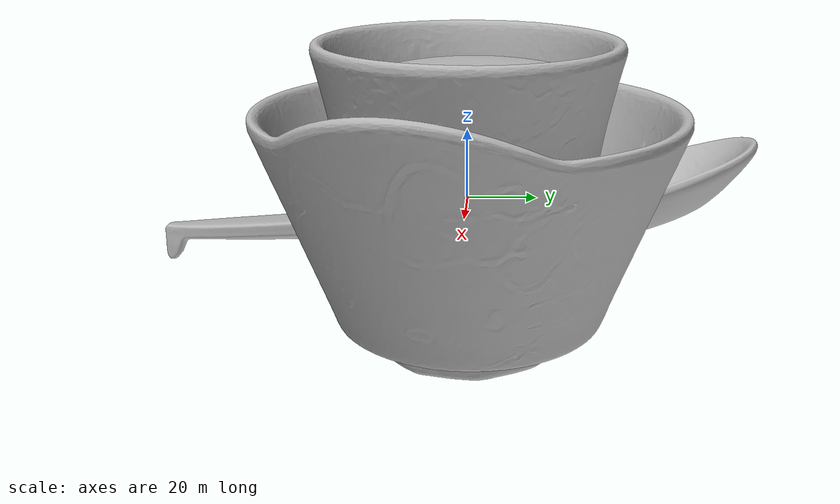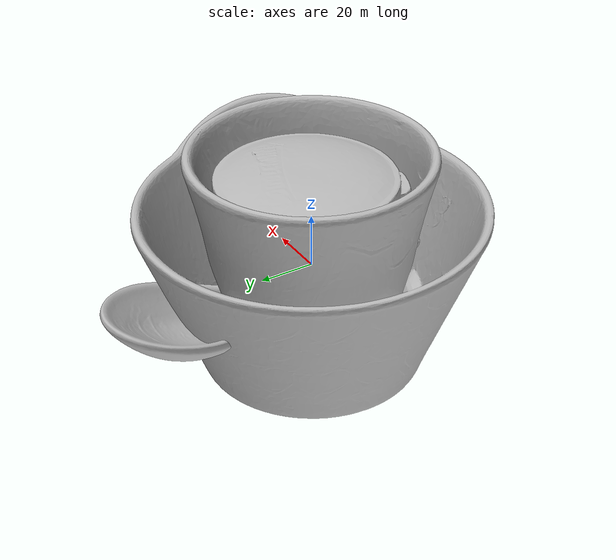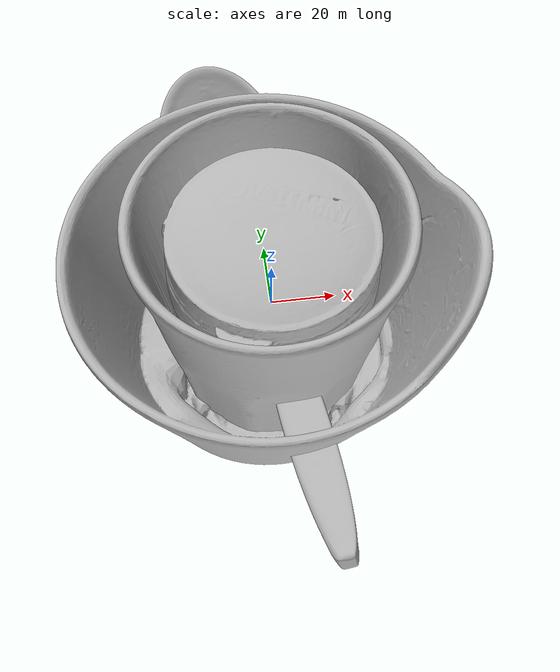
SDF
<sdf version="1.4">
 <world name="default">
  <light name="light1" type="point">
   <pose>0 0 1 0 0 0</pose>
   <diffuse>3 3 3 1</diffuse>
   <specular>3 3 3 1</specular>
  </light>
  <light name="light2" type="point">
   <pose>0 0.5 2 0 0 0</pose>
   <diffuse>1 1 1 1</diffuse>
   <specular>1 1 1 1</specular>
  </light>
  <light name="light3" type="point">
   <pose>0 0.5 2 0 0 0</pose>
   <diffuse>3 3 3 1</diffuse>
   <specular>3 3 3 1</specular>
  </light>
  <scene><ambient>0.7 0.7 0.7</ambient></scene>
  <model name="bottle1">
   <link name="link_bottle1">
    <collision name="default">
     <geometry>
      <mesh><uri>model://green_arrow/collision_meshes/collision.obj</uri><scale>1.0 1.0 1.0</scale></mesh>
     </geometry>
     <surface>
      <friction><ode><mu>0.5</mu><mu2>0.5</mu2></ode></friction>
      <contact><ode><max_vel>0</max_vel><min_depth>0.0001</min_depth><kp>1e8</kp></ode></contact>
     </surface>
    </collision>
    <visual name="default">
     <geometry>
      <mesh><uri>model://green_arrow/visual_meshes/visual.dae</uri><scale>1.0 1.0 1.0</scale></mesh>
     </geometry>
    </visual>
    <inertial>
     <mass>0.2764224410057068</mass>
     <pose>0.0005358477937988937 -0.0008270691032521427 0.002210969105362892 -0.06332196008274972 0.012988210902137025 0.674142157837799</pose>
     <inertia>
      <ixx>0.00020051825</ixx>
      <iyy>0.00020021446</iyy>
      <izz>0.00012947427</izz>
      <ixy>0</ixy>
      <ixz>0</ixz>
      <iyz>0</iyz>
     </inertia>
    </inertial>
   </link>
   <pose>0.04432397335767746 0.36850476264953613 0.03896165266633034 0.04528453508588784 0.024256379692251785 2.048726685239397</pose>
  </model>
  <model name="bottle2">
   <link name="link_bottle2">
    <collision name="default">
     <geometry>
      <mesh><uri>model://pure_zhen/collision_meshes/collision.obj</uri><scale>1.0 1.0 1.0</scale></mesh>
     </geometry>
     <surface>
      <friction><ode><mu>0.5</mu><mu2>0.5</mu2></ode></friction>
      <contact><ode><max_vel>0</max_vel><min_depth>0.0001</min_depth><kp>1e8</kp></ode></contact>
     </surface>
    </collision>
    <visual name="default">
     <geometry>
      <mesh><uri>model://pure_zhen/visual_meshes/visual.dae</uri><scale>1.0 1.0 1.0</scale></mesh>
     </geometry>
    </visual>
    <inertial>
     <mass>0.2372884750366211</mass>
     <pose>-8.582299778936431e-05 0.0002452346670906991 -0.0015797418309375644 -0.027641670524606855 0.005623077019143168 0.30585846122319743</pose>
     <inertia>
      <ixx>0.0007112664</ixx>
      <iyy>0.00071145216</iyy>
      <izz>7.51383e-05</izz>
      <ixy>0</ixy>
      <ixz>0</ixz>
      <iyz>0</iyz>
     </inertia>
    </inertial>
   </link>
   <pose>0.1359909325838089 0.35345184803009033 0.09194846451282501 0.0194888280940217 -0.016088133821751095 2.8335447381551075</pose>
  </model>
  <model name="silverware1">
   <link name="link_silverware1">
    <collision name="default">
     <geometry>
      <mesh><uri>model://doraemon_spoon/collision_meshes/collision.obj</uri><scale>1.0 1.0 1.0</scale></mesh>
     </geometry>
     <surface>
      <friction><ode><mu>0.5</mu><mu2>0.5</mu2></ode></friction>
      <contact><ode><max_vel>0</max_vel><min_depth>0.0001</min_depth><kp>1e8</kp></ode></contact>
     </surface>
    </collision>
    <visual name="default">
     <geometry>
      <mesh><uri>model://doraemon_spoon/visual_meshes/visual.dae</uri><scale>1.0 1.0 1.0</scale></mesh>
     </geometry>
    </visual>
    <inertial>
     <mass>0.020818473771214485</mass>
     <pose>-0.022165074944496155 -0.0006374582881107926 -0.0033325462136417627 -0.009147017253597407 0.0738041759980984 -0.014123826591698564</pose>
     <inertia>
      <ixx>1.6307007e-06</ixx>
      <iyy>4.631433e-05</iyy>
      <izz>4.7101734e-05</izz>
      <ixy>0</ixy>
      <ixz>0</ixz>
      <iyz>0</iyz>
     </inertia>
    </inertial>
   </link>
   <pose>0.1839226931333542 0.0006120465695858002 0.014919615350663662 0.11549597946407675 -0.004311034450734996 -1.4132918370094407</pose>
  </model>
  <model name="stationery1">
   <link name="link_stationery1">
    <collision name="default">
     <geometry>
      <mesh><uri>model://correction_fuid/collision_meshes/collision.obj</uri><scale>1.0 1.0 1.0</scale></mesh>
     </geometry>
     <surface>
      <friction><ode><mu>0.5</mu><mu2>0.5</mu2></ode></friction>
      <contact><ode><max_vel>0</max_vel><min_depth>0.0001</min_depth><kp>1e8</kp></ode></contact>
     </surface>
    </collision>
    <visual name="default">
     <geometry>
      <mesh><uri>model://correction_fuid/visual_meshes/visual.dae</uri><scale>1.0 1.0 1.0</scale></mesh>
     </geometry>
    </visual>
    <inertial>
     <mass>0.03337494283914566</mass>
     <pose>-0.00012557735317386687 -0.0009722886024974287 -0.001618212671019137 -0.010846603423614418 0.019488389217657873 -0.01599245375892703</pose>
     <inertia>
      <ixx>3.2324202e-05</ixx>
      <iyy>1.9563013e-06</iyy>
      <izz>3.3165503e-05</izz>
      <ixy>0</ixy>
      <ixz>0</ixz>
      <iyz>0</iyz>
     </inertia>
    </inertial>
   </link>
   <pose>0.22291995584964752 0.21194376051425934 0.009632830508053303 -0.0017271639365069099 -0.05616712789362028 1.4216126407770187</pose>
  </model>
  <model name="bowl1">
   <link name="link_bowl1">
    <collision name="default">
     <geometry>
      <mesh><uri>model://hello_kitty_bowl/collision_meshes/collision.obj</uri><scale>1.0 1.0 1.0</scale></mesh>
     </geometry>
     <surface>
      <friction><ode><mu>0.5</mu><mu2>0.5</mu2></ode></friction>
      <contact><ode><max_vel>0</max_vel><min_depth>0.0001</min_depth><kp>1e8</kp></ode></contact>
     </surface>
    </collision>
    <visual name="default">
     <geometry>
      <mesh><uri>model://hello_kitty_bowl/visual_meshes/visual.dae</uri><scale>1.0 1.0 1.0</scale></mesh>
     </geometry>
    </visual>
    <inertial>
     <mass>0.11590971797704697</mass>
     <pose>-0.0015402117278426886 0.0004577837826218456 -0.0080512510612607 0.004152729053700843 -0.12227221811834889 0.04345084117661168</pose>
     <inertia>
      <ixx>0.00017210246</ixx>
      <iyy>0.00018182951</iyy>
      <izz>0.00025734986</izz>
      <ixy>0</ixy>
      <ixz>0</ixz>
      <iyz>0</iyz>
     </inertia>
    </inertial>
   </link>
   <pose>0.03129151836037636 0.01402483880519867 0.0374140664935112 4.619199823457206e-05 6.006865143399827e-06 -0.3628552064220683</pose>
  </model>
  <model name="cup1">
   <link name="link_cup1">
    <collision name="default">
     <geometry>
      <mesh><uri>model://hello_kitty_cup/collision_meshes/collision.obj</uri><scale>1.0 1.0 1.0</scale></mesh>
     </geometry>
     <surface>
      <friction><ode><mu>0.5</mu><mu2>0.5</mu2></ode></friction>
      <contact><ode><max_vel>0</max_vel><min_depth>0.0001</min_depth><kp>1e8</kp></ode></contact>
     </surface>
    </collision>
    <visual name="default">
     <geometry>
      <mesh><uri>model://hello_kitty_cup/visual_meshes/visual.dae</uri><scale>1.0 1.0 1.0</scale></mesh>
     </geometry>
    </visual>
    <inertial>
     <mass>0.06483803689479828</mass>
     <pose>0.00027251249412074685 0.0002795030304696411 0.003044978016987443 0.05779149237921037 0.007964744961503711 -0.020451485374324563</pose>
     <inertia>
      <ixx>8.928983e-05</ixx>
      <iyy>9.0285175e-05</iyy>
      <izz>7.52867e-05</izz>
      <ixy>0</ixy>
      <ixz>0</ixz>
      <iyz>0</iyz>
     </inertia>
    </inertial>
   </link>
   <pose>0.11232250183820724 -0.11737974733114243 0.04621398448944092 -0.005710723954954273 0.010784176502821059 1.8354192709049102</pose>
  </model>
  <model name="plate1">
   <link name="link_plate1">
    <collision name="default">
     <geometry>
      <mesh><uri>model://hello_kitty_plate/collision_meshes/collision.obj</uri><scale>1.0 1.0 1.0</scale></mesh>
     </geometry>
     <surface>
      <friction><ode><mu>0.5</mu><mu2>0.5</mu2></ode></friction>
      <contact><ode><max_vel>0</max_vel><min_depth>0.0001</min_depth><kp>1e8</kp></ode></contact>
     </surface>
    </collision>
    <visual name="default">
     <geometry>
      <mesh><uri>model://hello_kitty_plate/visual_meshes/visual.dae</uri><scale>1.0 1.0 1.0</scale></mesh>
     </geometry>
    </visual>
    <inertial>
     <mass>0.035439908504486084</mass>
     <pose>0.007314295507967472 0.00028937257593497634 -0.0027947179041802883 -0.00010432032854243346 -0.007054443681780748 -0.014449040989024118</pose>
     <inertia>
      <ixx>6.833875e-05</ixx>
      <iyy>0.00012897578</iyy>
      <izz>0.00019583687</izz>
      <ixy>0</ixy>
      <ixz>0</ixz>
      <iyz>0</iyz>
     </inertia>
    </inertial>
   </link>
   <pose>0.21842095255851746 -0.10958275943994522 0.014416254125535488 0.0005464114200816372 0.08980131624704568 -1.6087480817252262</pose>
  </model>
  <model name="box4">
   <link name="link_box4">
    <collision name="default">
     <geometry>
      <mesh><uri>model://wooden_puzzle1/collision_meshes/collision.obj</uri><scale>1.0 1.0 1.0</scale></mesh>
     </geometry>
     <surface>
      <friction><ode><mu>0.5</mu><mu2>0.5</mu2></ode></friction>
      <contact><ode><max_vel>0</max_vel><min_depth>0.0001</min_depth><kp>1e8</kp></ode></contact>
     </surface>
    </collision>
    <visual name="default">
     <geometry>
      <mesh><uri>model://wooden_puzzle1/visual_meshes/visual.dae</uri><scale>1.0 1.0 1.0</scale></mesh>
     </geometry>
    </visual>
    <inertial>
     <mass>0.022725893184542656</mass>
     <pose>-0.00017350679263472557 7.972260937094688e-05 -9.191554272547364e-05 -0.07784633272711022 -0.26361483493671084 -0.5528696267966513</pose>
     <inertia>
      <ixx>4.2877546e-06</ixx>
      <iyy>4.205213e-06</iyy>
      <izz>4.2553816e-06</izz>
      <ixy>0</ixy>
      <ixz>0</ixz>
      <iyz>0</iyz>
     </inertia>
    </inertial>
   </link>
   <pose>0.08979349583387375 0.18734455108642578 0.016802018508315086 0.010510901693631327 -0.009456606182398542 1.909969548595385</pose>
  </model>
  <physics type="ode">
   <max_contacts>50</max_contacts>
   <ode>
    <solver><type>quick</type><iters>75</iters></solver>
    <constraints>
     <contact_max_correcting_vel>0</contact_max_correcting_vel>
     <contact_surface_layer>0</contact_surface_layer>
    </constraints>
   </ode>
  </physics>
 </world>
</sdf>
